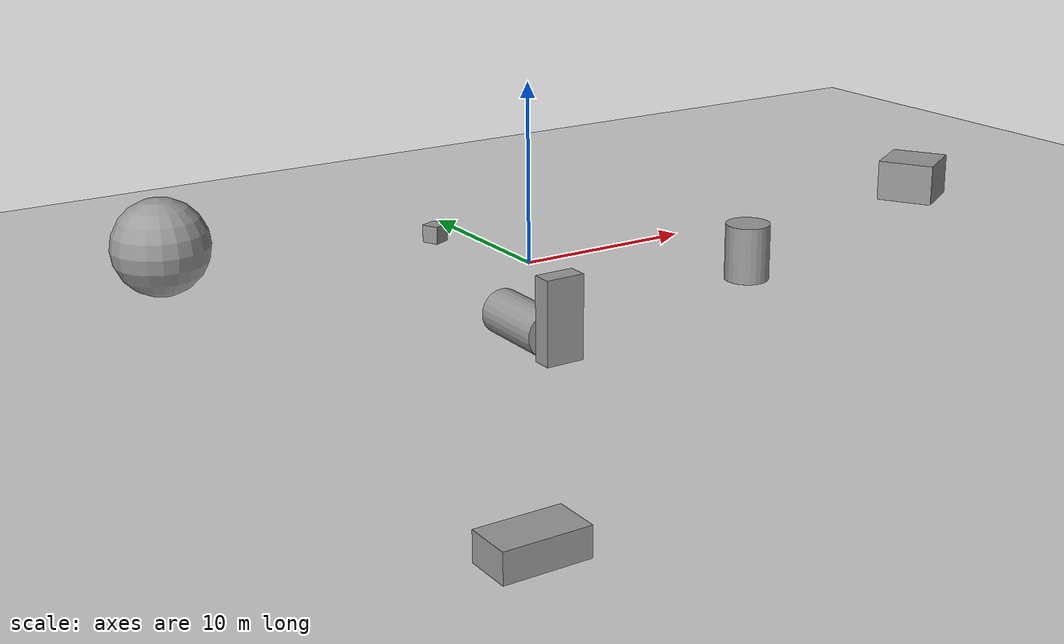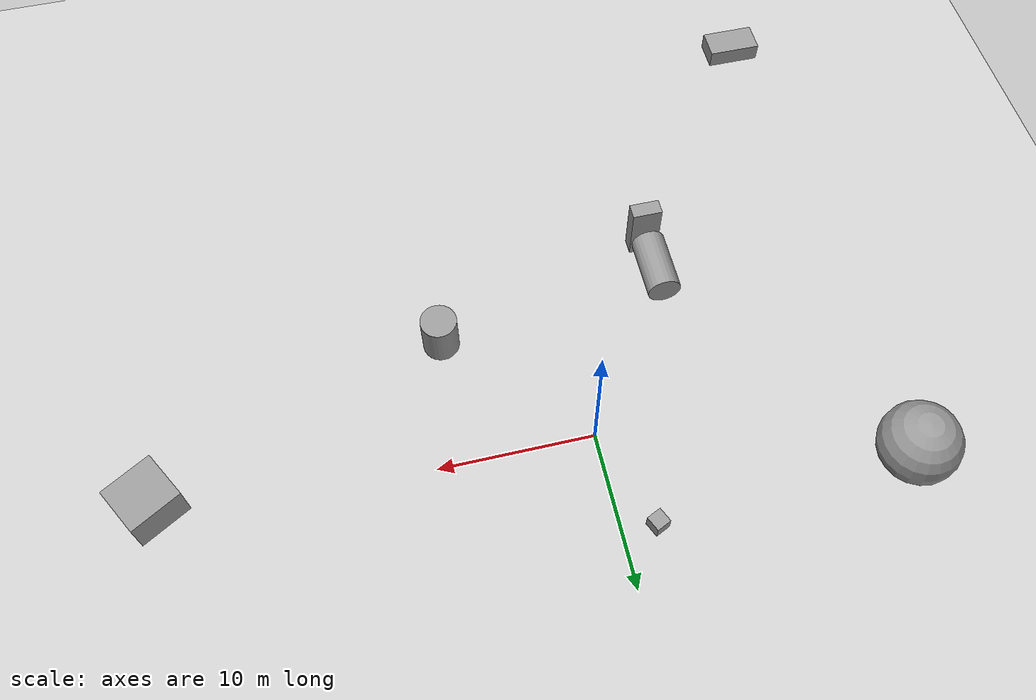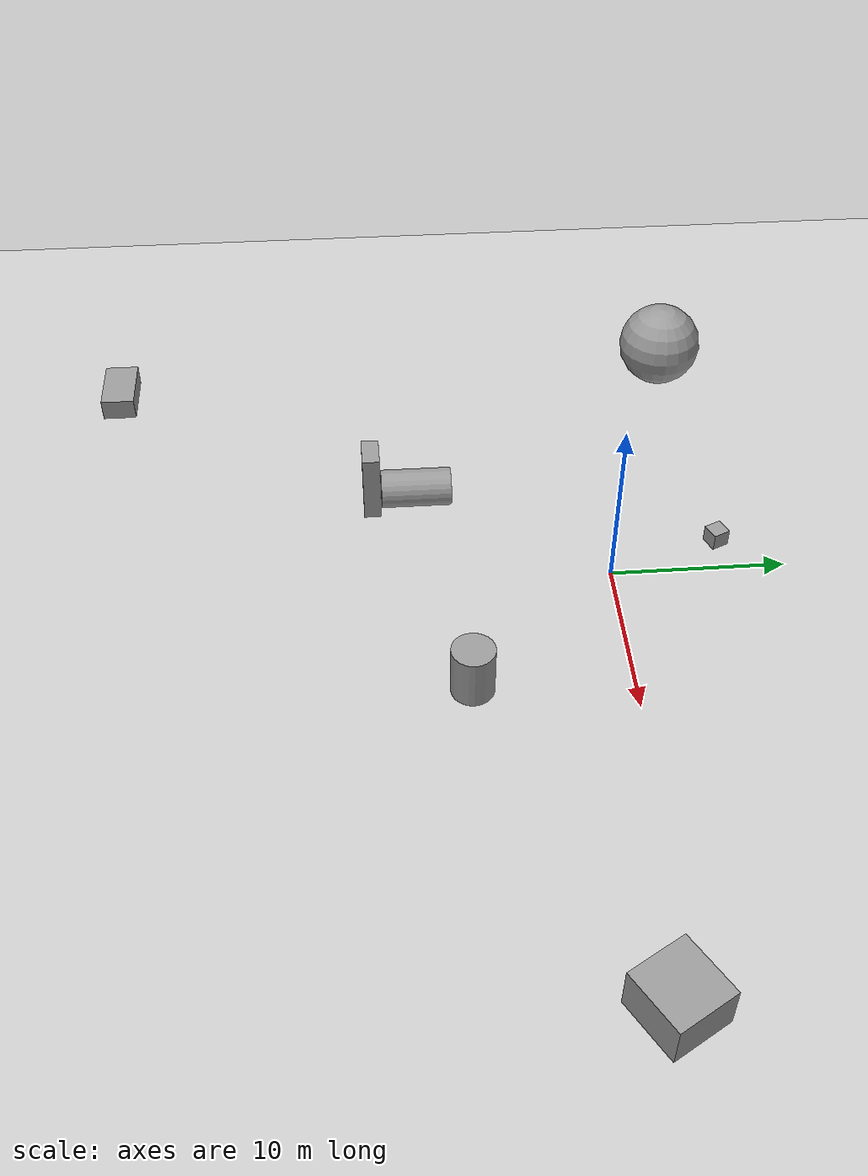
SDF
<sdf version="1.7">
 <world name="default">
  <light name="sun" type="directional">
   <pose>0 0 10 0 -0 0</pose>
   <diffuse>0.8 0.8 0.8 1</diffuse>
   <specular>0.2 0.2 0.2 1</specular>
   <attenuation>
    <range>1000</range>
    <constant>0.9</constant>
    <linear>0.01</linear>
    <quadratic>0.001</quadratic>
   </attenuation>
   <direction>-0.5 0.1 -0.9</direction>
   <spot><inner_angle>0</inner_angle><outer_angle>0</outer_angle><falloff>0</falloff></spot>
  </light>
  <model name="ground_plane">
   <static>1</static>
   <link name="link">
    <collision name="collision">
     <geometry><plane><normal>0 0 1</normal><size>100 100</size></plane></geometry>
     <surface>
      <contact><collide_bitmask>65535</collide_bitmask></contact>
      <friction><ode><mu>100</mu><mu2>50</mu2></ode></friction>
     </surface>
    </collision>
    <visual name="visual">
     <cast_shadows>0</cast_shadows>
     <geometry><plane><normal>0 0 1</normal><size>100 100</size></plane></geometry>
     <material>
      <script><uri>file://media/materials/scripts/gazebo.material</uri><name>Gazebo/Grey</name></script>
     </material>
    </visual>
   </link>
  </model>
  <gravity>0 0 -9.8</gravity>
  <magnetic_field>6e-06 2.3e-05 -4.2e-05</magnetic_field>
  <atmosphere type="adiabatic"/>
  <physics type="ode">
   <max_step_size>0.001</max_step_size>
   <real_time_factor>1</real_time_factor>
   <real_time_update_rate>700</real_time_update_rate>
  </physics>
  <scene><ambient>0.4 0.4 0.4 1</ambient><background>0.7 0.7 0.7 1</background><shadows>1</shadows></scene>
  <spherical_coordinates>
   <surface_model>EARTH_WGS84</surface_model>
   <latitude_deg>0</latitude_deg>
   <longitude_deg>0</longitude_deg>
   <elevation>0</elevation>
   <heading_deg>0</heading_deg>
  </spherical_coordinates>
  <model name="unit_box">
   <pose>-2.20765 6.47566 0.499995 -1e-05 -0 0.424738</pose>
   <link name="link">
    <inertial>
     <mass>1</mass>
     <inertia>
      <ixx>0.166667</ixx>
      <ixy>0</ixy>
      <ixz>0</ixz>
      <iyy>0.166667</iyy>
      <iyz>0</iyz>
      <izz>0.166667</izz>
     </inertia>
    </inertial>
    <collision name="collision"><geometry><box><size>1 1 1</size></box></geometry></collision>
    <visual name="visual">
     <geometry><box><size>1 1 1</size></box></geometry>
     <material>
      <script><name>Gazebo/Grey</name><uri>file://media/materials/scripts/gazebo.material</uri></script>
     </material>
    </visual>
   </link>
  </model>
  <model name="unit_cylinder">
   <pose>8.15435 -8.61483 1.51382 0 -0 1e-06</pose>
   <link name="link">
    <inertial>
     <mass>1</mass>
     <inertia><ixx>0.145833</ixx><ixy>0</ixy><ixz>0</ixz><iyy>0.145833</iyy><iyz>0</iyz><izz>0.125</izz></inertia>
    </inertial>
    <collision name="collision">
     <geometry><cylinder><radius>1.18158</radius><length>3.02766</length></cylinder></geometry>
    </collision>
    <visual name="visual">
     <geometry><cylinder><radius>1.18158</radius><length>3.02766</length></cylinder></geometry>
     <material>
      <script><name>Gazebo/Grey</name><uri>file://media/materials/scripts/gazebo.material</uri></script>
     </material>
    </visual>
   </link>
  </model>
  <model name="unit_sphere_0">
   <pose>-18.4891 5.90059 2.56543 0 -0 0</pose>
   <link name="link">
    <inertial>
     <mass>1</mass>
     <inertia><ixx>0.1</ixx><ixy>0</ixy><ixz>0</ixz><iyy>0.1</iyy><iyz>0</iyz><izz>0.1</izz></inertia>
    </inertial>
    <collision name="collision"><geometry><sphere><radius>2.56543</radius></sphere></geometry></collision>
    <visual name="visual">
     <geometry><sphere><radius>2.56543</radius></sphere></geometry>
     <material>
      <script><name>Gazebo/Grey</name><uri>file://media/materials/scripts/gazebo.material</uri></script>
     </material>
    </visual>
   </link>
  </model>
  <model name="unit_box_0">
   <pose>-18.3245 -29.0914 0.641535 1e-06 0 -0.001399</pose>
   <link name="link">
    <inertial>
     <mass>1</mass>
     <inertia>
      <ixx>0.166667</ixx>
      <ixy>0</ixy>
      <ixz>0</ixz>
      <iyy>0.166667</iyy>
      <iyz>0</iyz>
      <izz>0.166667</izz>
     </inertia>
    </inertial>
    <collision name="collision"><geometry><box><size>3.69267 2.04725 1.28307</size></box></geometry></collision>
    <visual name="visual">
     <geometry><box><size>3.69267 2.04725 1.28307</size></box></geometry>
     <material>
      <script><name>Gazebo/Grey</name><uri>file://media/materials/scripts/gazebo.material</uri></script>
     </material>
    </visual>
   </link>
  </model>
  <model name="unit_box_1">
   <pose>27.2644 -1.46897 1.21033 -3e-06 -0 0.532035</pose>
   <link name="link">
    <inertial>
     <mass>1</mass>
     <inertia>
      <ixx>0.166667</ixx>
      <ixy>0</ixy>
      <ixz>0</ixz>
      <iyy>0.166667</iyy>
      <iyz>0</iyz>
      <izz>0.166667</izz>
     </inertia>
    </inertial>
    <collision name="collision"><geometry><box><size>3.42992 3.33147 2.42066</size></box></geometry></collision>
    <visual name="visual">
     <geometry><box><size>3.42992 3.33147 2.42066</size></box></geometry>
     <material>
      <script><name>Gazebo/Grey</name><uri>file://media/materials/scripts/gazebo.material</uri></script>
     </material>
    </visual>
   </link>
  </model>
  <model name="unit_cylinder_0">
   <pose>-6.99534 -10.6721 1.11774 1.5706 -0 0</pose>
   <link name="link">
    <inertial>
     <mass>1</mass>
     <inertia><ixx>0.145833</ixx><ixy>0</ixy><ixz>0</ixz><iyy>0.145833</iyy><iyz>0</iyz><izz>0.125</izz></inertia>
    </inertial>
    <collision name="collision">
     <geometry><cylinder><radius>1.11814</radius><length>4.1146</length></cylinder></geometry>
    </collision>
    <visual name="visual">
     <geometry><cylinder><radius>1.11814</radius><length>4.1146</length></cylinder></geometry>
     <material>
      <script><name>Gazebo/Grey</name><uri>file://media/materials/scripts/gazebo.material</uri></script>
     </material>
    </visual>
   </link>
  </model>
  <model name="unit_box_2">
   <pose>-6.78548 -13.3018 2.08056 0 -1e-06 0.001882</pose>
   <link name="link">
    <inertial>
     <mass>1</mass>
     <inertia>
      <ixx>0.166667</ixx>
      <ixy>0</ixy>
      <ixz>0</ixz>
      <iyy>0.166667</iyy>
      <iyz>0</iyz>
      <izz>0.166667</izz>
     </inertia>
    </inertial>
    <collision name="collision"><geometry><box><size>1.98064 1 4.16111</size></box></geometry></collision>
    <visual name="visual">
     <geometry><box><size>1.98064 1 4.16111</size></box></geometry>
     <material>
      <script><name>Gazebo/Grey</name><uri>file://media/materials/scripts/gazebo.material</uri></script>
     </material>
    </visual>
   </link>
  </model>
 </world>
</sdf>
